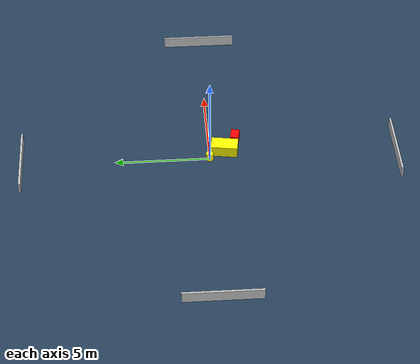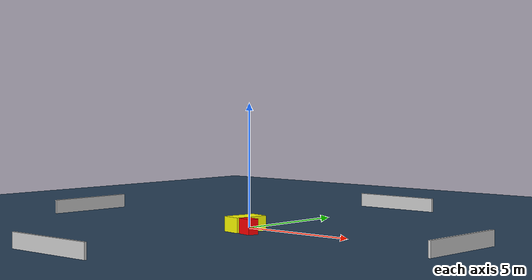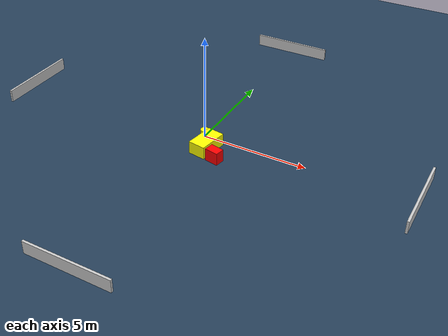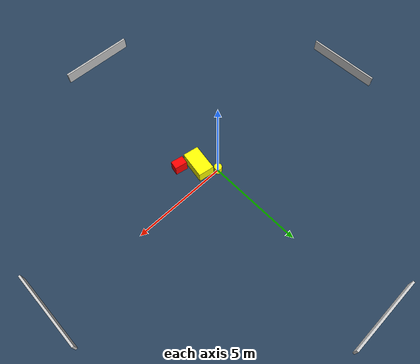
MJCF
<?xml version="1.0" ?>
<mujoco model="generated_environment">
  <option timestep="0.01" integrator="RK4" cone="elliptic"/>
  <default>
    <geom density="1"/>
  </default>
  <asset>
    <texture builtin="gradient" height="3072" name="skybox" rgb1="0.3 0.5 0.7" rgb2="0 0 0" type="skybox" width="512"/>
    <texture builtin="checker" height="300" name="groundplane" rgb1="0.2 0.3 0.4" rgb2="0.1 0.2 0.3" type="2d" width="300"/>
    <material name="groundplane" reflectance="0.2" texrepeat="5 5" texture="groundplane"/>
  </asset>
  <worldbody>
    <light dir="0 0 -1" directional="true" pos="0 0 1.5"/>
    <geom condim="3" friction="0.5 0.005 0.001" material="groundplane" name="floor" pos="0 0 0" size="0 0 0.05" type="plane"/>
    <body name="walls">
      <geom name="wall_1" condim="4" pos="-10.0 0.0 0.3" rgba="0.800000011920929 0.800000011920929 0.800000011920929 1.0" size="0.05 2.0 0.3" type="box"/>
      <geom name="wall_2" condim="4" pos="10.0 0.0 0.3" rgba="0.800000011920929 0.800000011920929 0.800000011920929 1.0" size="0.05 2.0 0.3" type="box"/>
      <geom name="wall_3" condim="4" pos="0.0 -10.0 0.3" rgba="0.800000011920929 0.800000011920929 0.800000011920929 1.0" size="2.0 0.05 0.3" type="box"/>
      <geom name="wall_4" condim="4" pos="0.0 10.0 0.3" rgba="0.800000011920929 0.800000011920929 0.800000011920929 1.0" size="2.0 0.05 0.3" type="box"/>
    </body>
    <body name="robot">
      <joint name="joint_x" type="slide" pos="0 0 0" axis="1 0 0"/>
      <joint name="joint_y" type="slide" pos="0 0 0" axis="0 1 0"/>
      <geom name="robot" type="cylinder" pos="0.0 0.0 0.2" size="0.2 0.2 0.0" mass="5.0" friction="1.0 0.005 0.0001" condim="4" rgba="1.0 1.0 0.0 1.0"/>
    </body>
    <body name="obstacle_1_movable">
      <geom name="obstacle_1_movable" condim="4" pos="0.5474968854187204 -0.8276077368385609 0.3" euler="0 0 350.92493399629006" friction="0.0 0.005 0.001" rgba="1.0 1.0 0.0 1.0" size="0.4087644707138 0.7118997235763953 0.3" type="box" mass="0.1"/>
      <joint type="free"/>
    </body>
    <body name="obstacle_2_static">
      <geom name="obstacle_2_static" condim="4" pos="1.2935217710823972 -1.436249875239915 0.3" euler="0 0 259.2056813177015" friction="0.0 0.005 0.001" rgba="1.0 0.0 0.0 1.0" size="0.22293540093303096 0.3226537657253744 0.3" type="box"/>
    </body>
  </worldbody>
  <actuator>
    <motor name="actuator_x" joint="joint_x" gear="1" ctrlrange="-1 1"/>
    <motor name="actuator_y" joint="joint_y" gear="1" ctrlrange="-1 1"/>
  </actuator>
</mujoco>
